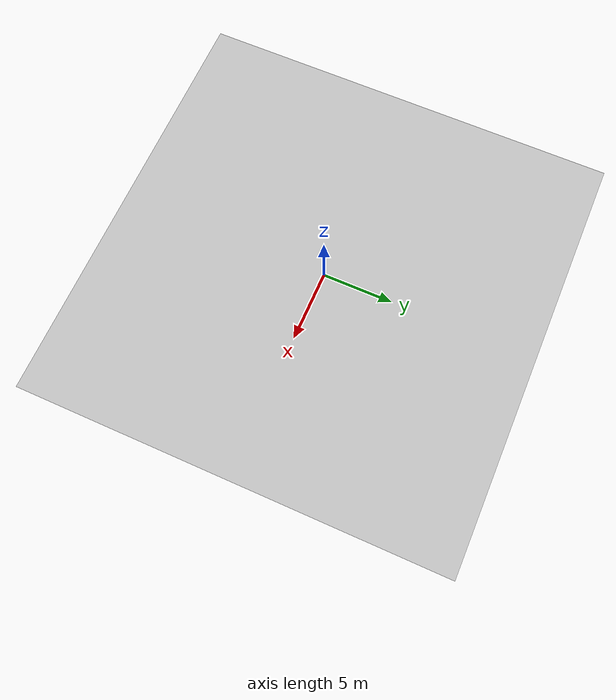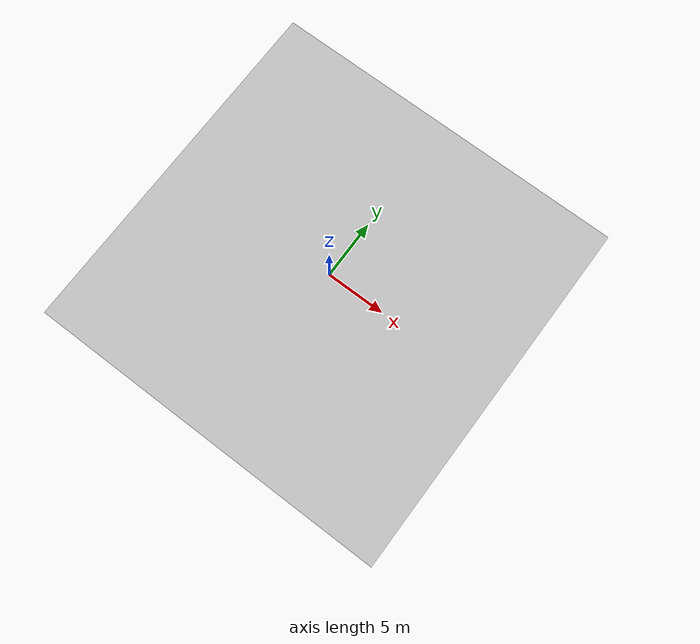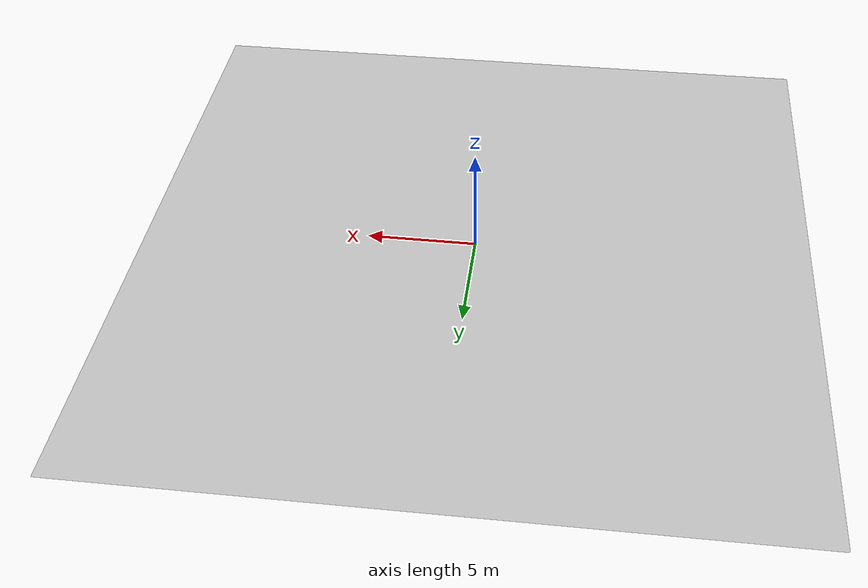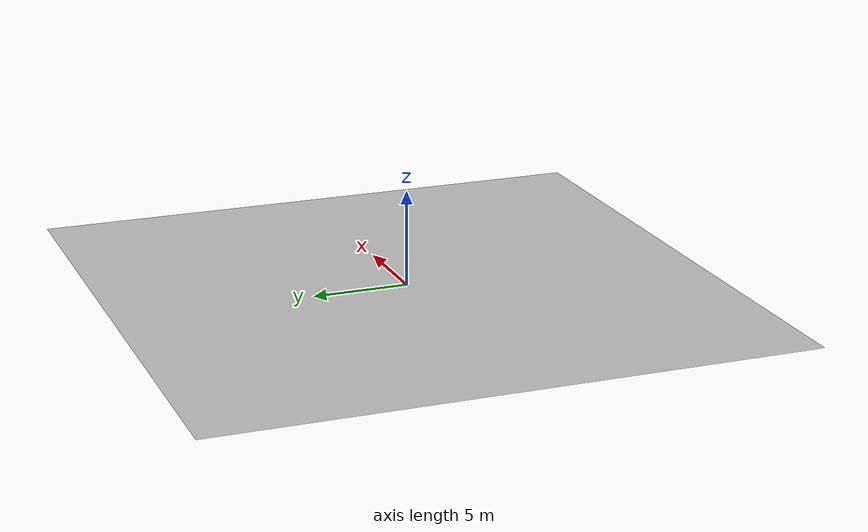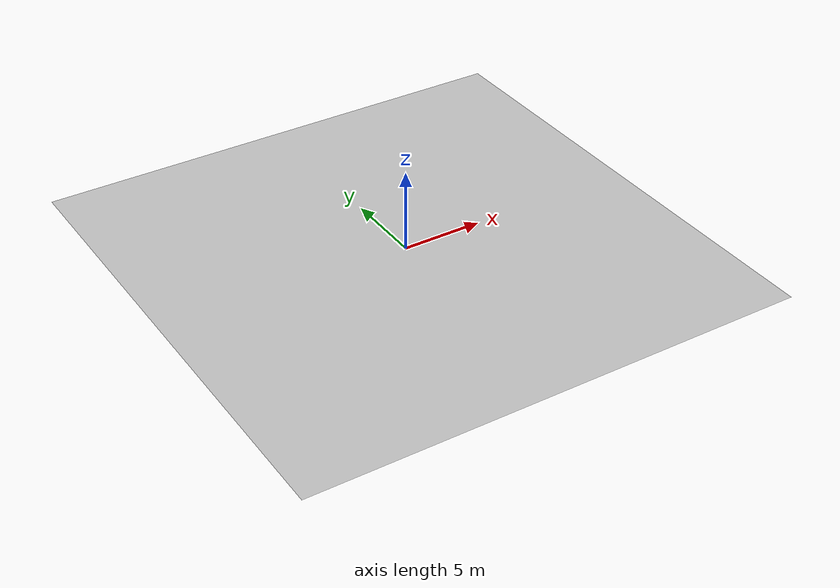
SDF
<?xml version="1.0" ?>
<sdf version="1.5">
  <model name="ground_plane_invisible">
    <static>true</static>
    <link name="link">

        <visual name='visual'>
            <pose frame=''>0 0 0 0 0 0</pose>
            <geometry>
            <mesh>
                <uri>model://ground_plane_tron/meshes/tron_floor.dae</uri>
                <scale>0.5 0.5 0.5</scale>
            </mesh>
            </geometry>
            <cast_shadows>0</cast_shadows>
            <transparency>0</transparency>
        </visual>

      <collision name="collision">
        <geometry>
          <plane>
            <normal>0 0 1</normal>
            <size>100 100</size>
          </plane>
        </geometry>
        <surface>
          <friction>
            <ode>
              <mu>100</mu>
              <mu2>50</mu2>
            </ode>
          </friction>
        </surface>
      </collision>

    </link>
  </model>
</sdf>
